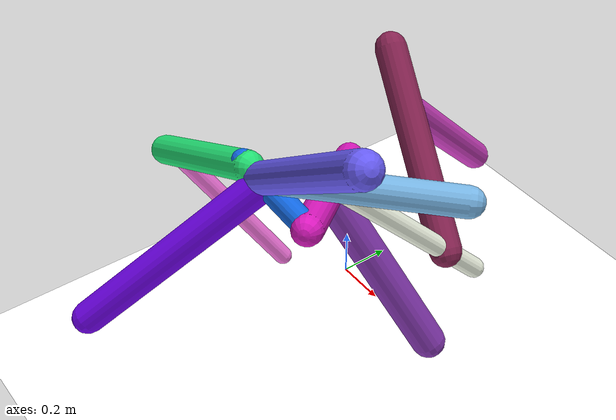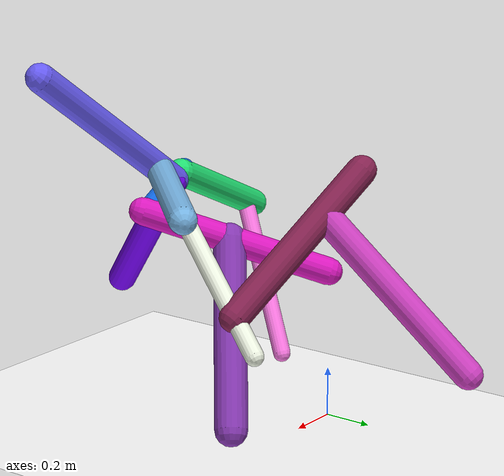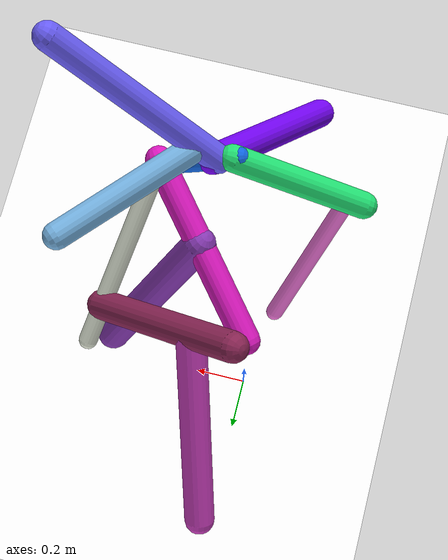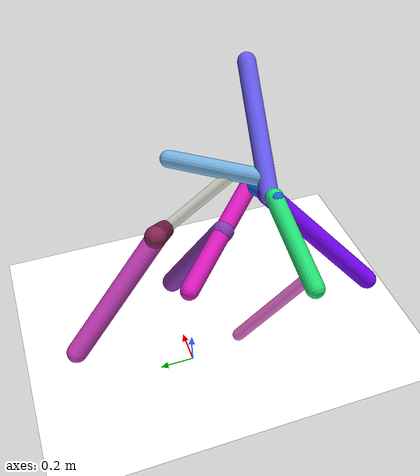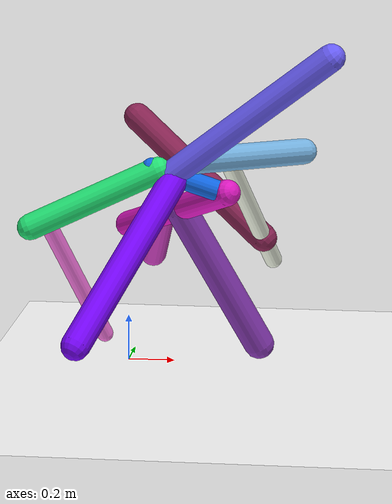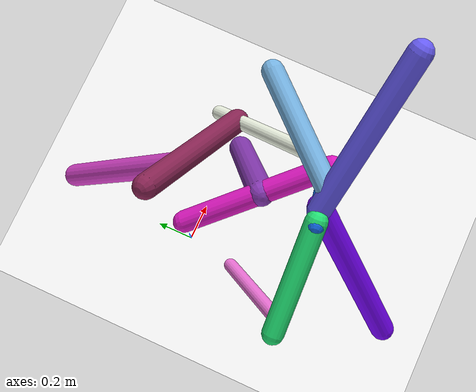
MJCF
<mujoco model="morphology">
  <option timestep="0.01"/>
  <default>
    <default class="/"/>
    <default class="0/"/>
    <default class="0/1/"/>
    <default class="0/2/"/>
    <default class="0/2/3/"/>
    <default class="0/2/4/"/>
    <default class="0/2/4/5/"/>
    <default class="0/2/4/5/6/"/>
    <default class="0/2/4/5/6/7/"/>
    <default class="0/2/4/5/6/7/8/"/>
    <default class="0/2/9/"/>
    <default class="0/2/9/10/"/>
  </default>
  <asset>
    <texture name="texplane" type="2d" builtin="checker" rgb1="0.10000000000000001 0.20000000000000001 0.29999999999999999" rgb2="0.20000000000000001 0.29999999999999999 0.40000000000000002" width="300" height="300"/>
    <material name="MatPlane" class="/" texture="texplane" texrepeat="20 20" specular="1" shininess="1" reflectance="0.5"/>
  </asset>
  <worldbody>
    <light name="//unnamed_light_0" class="/" directional="true" pos="0 0 1.5" dir="0 0 -1.3" cutoff="100" exponent="1" diffuse="1 1 1" specular="0.10000000000000001 0.10000000000000001 0.10000000000000001"/>
    <geom name="ground" class="/" type="plane" size="15 15 0.5" material="MatPlane" rgba="1 1 1 1"/>
    <site name="body" class="/" size="9.9999999999999995e-07 9.9999999999999995e-07 9.9999999999999995e-07" pos="0 0 0.60878816843032835"/>
    <body pos="0 0 0.60878816843032835" name="0/">
      <freejoint name="0/"/>
      <geom name="0/geom" class="0/" type="capsule" contype="1" conaffinity="1" condim="3" size="0.055756894150905116" rgba="0.87209042831629546 0.097362311759287778 0.76017769405815871 1" friction="0.59999999999999998 0.10000000000000001 0.10000000000000001" fromto="0 0 0 0.48864209948644644 -0.5507622175339999 0.2645350859843516"/>
      <site name="0/end0" class="0/" size="0.0050000000000000001" pos="0.48864209948644644 -0.5507622175339999 0.2645350859843516"/>
      <site name="0/attach1" class="0/" size="9.9999999999999995e-07 9.9999999999999995e-07 9.9999999999999995e-07" pos="0.26223758130357189 -0.29557533407641629 0.14196697581190085"/>
      <body pos="0.26223758130357189 -0.29557533407641629 0.14196697581190085" name="0/1/">
        <joint name="0/1/joint/" class="0/" type="hinge" axis="0 0 1" limited="true" range="-36.820495475630949 36.820495475630949"/>
        <geom name="0/1/geom" class="0/1/" type="capsule" contype="1" conaffinity="1" condim="3" size="0.065901203452503429" rgba="0.53789278889756065 0.22867997091859027 0.71381129347866856 1" friction="0.59999999999999998 0.10000000000000001 0.10000000000000001" fromto="0 0 0 0.31562412105291937 0.24955009460578981 -0.65075513208022517"/>
        <site name="0/1/end1" class="0/1/" size="0.0050000000000000001" pos="0.31562412105291937 0.24955009460578981 -0.65075513208022517"/>
      </body>
      <site name="0/attach2" class="0/" size="9.9999999999999995e-07 9.9999999999999995e-07 9.9999999999999995e-07" pos="0.47960820715536817 -0.54057986407232061 0.25964442779692409"/>
      <body pos="0.47960820715536817 -0.54057986407232061 0.25964442779692409" name="0/2/">
        <geom name="0/2/geom" class="0/2/" type="capsule" contype="1" conaffinity="1" condim="3" size="0.04387743096755866" rgba="0.068828783184894715 0.41049384067870154 0.89640530413212183 1" friction="0.59999999999999998 0.10000000000000001 0.10000000000000001" fromto="0 0 0 -0.29686578550429515 -0.05012994390154657 0.10874897913932469"/>
        <site name="0/2/end2" class="0/2/" size="0.0050000000000000001" pos="-0.29686578550429515 -0.05012994390154657 0.10874897913932469"/>
        <site name="0/2/attach3" class="0/2/" size="9.9999999999999995e-07 9.9999999999999995e-07 9.9999999999999995e-07" pos="-0.20061344057636551 -0.033876387960659567 0.073489462004679817"/>
        <body pos="-0.20061344057636551 -0.033876387960659567 0.073489462004679817" name="0/2/3/">
          <joint name="0/2/3/joint/" class="0/2/" type="hinge" axis="0.37408410866420844 -0.38823716510355299 0.8422190827078555" limited="true" range="-60.755478375713871 60.755478375713871"/>
          <geom name="0/2/3/geom" class="0/2/3/" type="capsule" contype="1" conaffinity="1" condim="3" size="0.059697786745782008" rgba="0.46547240654666677 0.013382766007943747 0.97555341523608097 1" friction="0.59999999999999998 0.10000000000000001 0.10000000000000001" fromto="0 0 0 -0.3312925671381538 -0.55722029891251434 -0.57946676354289184"/>
          <site name="0/2/3/end3" class="0/2/3/" size="0.0050000000000000001" pos="-0.3312925671381538 -0.55722029891251434 -0.57946676354289184"/>
        </body>
        <site name="0/2/attach4" class="0/2/" size="9.9999999999999995e-07 9.9999999999999995e-07 9.9999999999999995e-07" pos="-0.21981423970128414 -0.037118711697502284 0.080523170183434981"/>
        <body pos="-0.21981423970128414 -0.037118711697502284 0.080523170183434981" name="0/2/4/">
          <joint name="0/2/4/joint/" class="0/2/" type="hinge" axis="8.3266726846886741e-17 0.90815594399656563 0.41863203578286623" limited="true" range="-54.164211967563503 54.164211967563503"/>
          <geom name="0/2/4/geom" class="0/2/4/" type="capsule" contype="1" conaffinity="1" condim="3" size="0.057628947102242992" rgba="0.41330681852187878 0.36878159732916094 0.9734687393908158 1" friction="0.59999999999999998 0.10000000000000001 0.10000000000000001" fromto="0 0 0 0.65691415009243181 -0.10192655329234934 0.51209442337666822"/>
          <site name="0/2/4/end4" class="0/2/4/" size="0.0050000000000000001" pos="0.65691415009243181 -0.10192655329234934 0.51209442337666822"/>
          <site name="0/2/4/attach5" class="0/2/4/" size="9.9999999999999995e-07 9.9999999999999995e-07 9.9999999999999995e-07" pos="0.078236920391257597 -0.012139211241783665 0.060989233720859883"/>
          <body pos="0.078236920391257597 -0.012139211241783665 0.060989233720859883" name="0/2/4/5/">
            <joint name="0/2/4/5/joint/" class="0/2/4/" type="hinge" axis="0.62222735162273146 0.15281706499602415 -0.76777605298587071" limited="true" range="-62.189481823577204 62.189481823577204"/>
            <geom name="0/2/4/5/geom" class="0/2/4/5/" type="capsule" contype="1" conaffinity="1" condim="3" size="0.055083721368479249" rgba="0.4703838852047747 0.71331272751918406 0.90002092326380911 1" friction="0.59999999999999998 0.10000000000000001 0.10000000000000001" fromto="0 0 0 0.43187948418260769 0.47009455458747573 -0.0393486403461345"/>
            <site name="0/2/4/5/end5" class="0/2/4/5/" size="0.0050000000000000001" pos="0.43187948418260769 0.47009455458747573 -0.0393486403461345"/>
            <site name="0/2/4/5/attach6" class="0/2/4/5/" size="9.9999999999999995e-07 9.9999999999999995e-07 9.9999999999999995e-07" pos="0.13666491339015421 0.14875777604827409 -0.012451572074794472"/>
            <body pos="0.13666491339015421 0.14875777604827409 -0.012451572074794472" name="0/2/4/5/6/">
              <joint name="0/2/4/5/6/joint/" class="0/2/4/5/" type="hinge" axis="-0.73758037126543441 0.67290617629118443 -0.056324717781106232" limited="true" range="-45.023488436466621 45.023488436466621"/>
              <geom name="0/2/4/5/6/geom" class="0/2/4/5/6/" type="capsule" contype="1" conaffinity="1" condim="3" size="0.037960447243144013" rgba="0.94197679378450294 0.96829584112803269 0.89892824807766569 1" friction="0.59999999999999998 0.10000000000000001 0.10000000000000001" fromto="0 0 0 0.1495006030091699 0.54201294236822251 -0.55337544159806007"/>
              <site name="0/2/4/5/6/end6" class="0/2/4/5/6/" size="0.0050000000000000001" pos="0.1495006030091699 0.54201294236822251 -0.55337544159806007"/>
              <site name="0/2/4/5/6/attach7" class="0/2/4/5/6/" size="9.9999999999999995e-07 9.9999999999999995e-07 9.9999999999999995e-07" pos="0.11641833700233066 0.42207351752539879 -0.43092166420776912"/>
              <body pos="0.11641833700233066 0.42207351752539879 -0.43092166420776912" name="0/2/4/5/6/7/">
                <geom name="0/2/4/5/6/7/geom" class="0/2/4/5/6/7/" type="capsule" contype="1" conaffinity="1" condim="3" size="0.059944937485283609" rgba="0.53790345194941913 0.14456900731579281 0.33000948350136095 1" friction="0.59999999999999998 0.10000000000000001 0.10000000000000001" fromto="0 0 0 -0.5723038415122117 0.18366477744662379 0.48669656592744026"/>
                <site name="0/2/4/5/6/7/end7" class="0/2/4/5/6/7/" size="0.0050000000000000001" pos="-0.5723038415122117 0.18366477744662379 0.48669656592744026"/>
                <site name="0/2/4/5/6/7/attach8" class="0/2/4/5/6/7/" size="9.9999999999999995e-07 9.9999999999999995e-07 9.9999999999999995e-07" pos="-0.39920720574207486 0.12811429398057297 0.33949235010335183"/>
                <body pos="-0.39920720574207486 0.12811429398057297 0.33949235010335183" name="0/2/4/5/6/7/8/">
                  <joint name="0/2/4/5/6/7/8/joint/" class="0/2/4/5/6/7/" type="hinge" axis="-0.67261764826048798 -0.2612660001925361 -0.69233342862519953" limited="true" range="-45.75888120088608 45.75888120088608"/>
                  <geom name="0/2/4/5/6/7/8/geom" class="0/2/4/5/6/7/8/" type="capsule" contype="1" conaffinity="1" condim="3" size="0.059129344985395071" rgba="0.82255080528734037 0.25514816786731076 0.76892643259223847 1" friction="0.59999999999999998 0.10000000000000001 0.10000000000000001" fromto="0 0 0 -0.17192067179763582 0.56333270949494096 -0.58435174801075773"/>
                  <site name="0/2/4/5/6/7/8/end8" class="0/2/4/5/6/7/8/" size="0.0050000000000000001" pos="-0.17192067179763582 0.56333270949494096 -0.58435174801075773"/>
                </body>
              </body>
            </body>
          </body>
        </body>
        <site name="0/2/attach9" class="0/2/" size="9.9999999999999995e-07 9.9999999999999995e-07 9.9999999999999995e-07" pos="-0.27468833718007407 -0.046384971275334093 0.10062485375021252"/>
        <body pos="-0.27468833718007407 -0.046384971275334093 0.10062485375021252" name="0/2/9/">
          <joint name="0/2/9/joint/" class="0/2/" type="hinge" axis="8.3266726846886741e-17 0.90815594399656563 0.41863203578286623" limited="true" range="-61.811245195342522 61.811245195342522"/>
          <geom name="0/2/9/geom" class="0/2/9/" type="capsule" contype="1" conaffinity="1" condim="3" size="0.054950405421912124" rgba="0.13434941254409372 0.8877360873863227 0.45907087856181861 1" friction="0.59999999999999998 0.10000000000000001 0.10000000000000001" fromto="0 0 0 -0.52579439785978299 -0.032819111971716053 -0.24548587719267168"/>
          <site name="0/2/9/end9" class="0/2/9/" size="0.0050000000000000001" pos="-0.52579439785978299 -0.032819111971716053 -0.24548587719267168"/>
          <site name="0/2/9/attach10" class="0/2/9/" size="9.9999999999999995e-07 9.9999999999999995e-07 9.9999999999999995e-07" pos="-0.46074381053718932 -0.02875877485542859 -0.2151146892230274"/>
          <body pos="-0.46074381053718932 -0.02875877485542859 -0.2151146892230274" name="0/2/9/10/">
            <joint name="0/2/9/10/joint/" class="0/2/9/" type="hinge" axis="0.42613127801548611 -0.11987800812690649 -0.89668355458568216" limited="true" range="-47.059369504677434 47.059369504677434"/>
            <geom name="0/2/9/10/geom" class="0/2/9/10/" type="capsule" contype="1" conaffinity="1" condim="3" size="0.035910536159321285" rgba="0.98958817457382064 0.47863538833979213 0.89591524235742903 1" friction="0.59999999999999998 0.10000000000000001 0.10000000000000001" fromto="0 0 0 0.19201978729681946 0.33790979481182815 -0.56596116708618438"/>
            <site name="0/2/9/10/end10" class="0/2/9/10/" size="0.0050000000000000001" pos="0.19201978729681946 0.33790979481182815 -0.56596116708618438"/>
          </body>
        </body>
      </body>
      <camera name="0/iso" class="0/" mode="trackcom" pos="-2.2999999999999998 -2.2999999999999998 1" xyaxes="0.45000000000000001 -0.45000000000000001 0 0.29999999999999999 0.14999999999999999 0.93999999999999995"/>
    </body>
  </worldbody>
  <actuator>
    <motor name="0/1/motor" class="0/1/" ctrllimited="true" ctrlrange="-1 1" gear="89" joint="0/1/joint/"/>
    <motor name="0/2/3/motor" class="0/2/3/" ctrllimited="true" ctrlrange="-1 1" gear="95" joint="0/2/3/joint/"/>
    <motor name="0/2/4/motor" class="0/2/4/" ctrllimited="true" ctrlrange="-1 1" gear="77" joint="0/2/4/joint/"/>
    <motor name="0/2/4/5/motor" class="0/2/4/5/" ctrllimited="true" ctrlrange="-1 1" gear="89" joint="0/2/4/5/joint/"/>
    <motor name="0/2/4/5/6/motor" class="0/2/4/5/6/" ctrllimited="true" ctrlrange="-1 1" gear="77" joint="0/2/4/5/6/joint/"/>
    <motor name="0/2/4/5/6/7/8/motor" class="0/2/4/5/6/7/8/" ctrllimited="true" ctrlrange="-1 1" gear="68" joint="0/2/4/5/6/7/8/joint/"/>
    <motor name="0/2/9/motor" class="0/2/9/" ctrllimited="true" ctrlrange="-1 1" gear="91" joint="0/2/9/joint/"/>
    <motor name="0/2/9/10/motor" class="0/2/9/10/" ctrllimited="true" ctrlrange="-1 1" gear="55" joint="0/2/9/10/joint/"/>
  </actuator>
  <sensor>
    <subtreelinvel name="velocity" body="0/"/>
  </sensor>
</mujoco>
